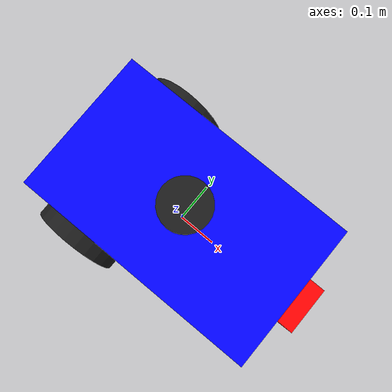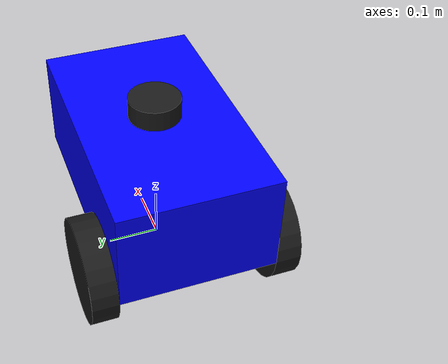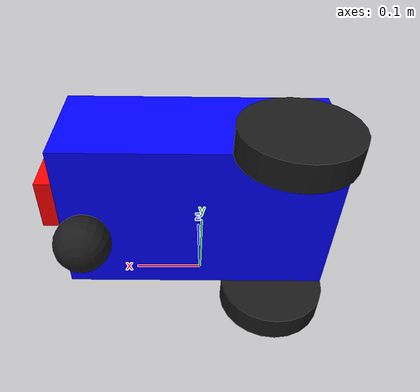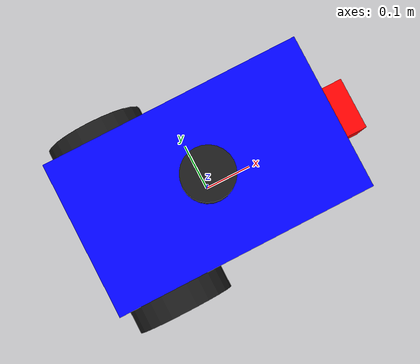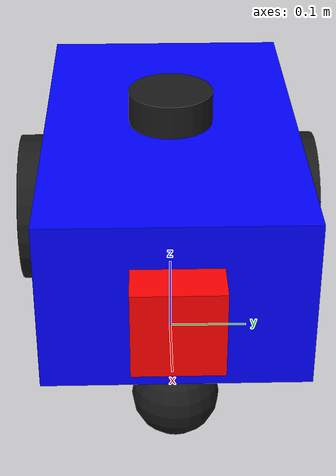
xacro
<?xml version="1.0"?>
<robot name="robot" xmlns:xacro="http://www.ros.org/wiki/xacro">

    <!-- Include common properties -->
    <xacro:include filename="common_properties.xacro"/>
    <!-- Include mobile robot -->
    <xacro:include filename="mobile_robo.xacro"/>
    <!-- Include mobile robot gazebo -->
    <xacro:include filename="mobile_robo_gazebo.xacro"/>
    <!-- Include camera -->
    <xacro:include filename="camera.xacro"/>
    <!-- Include lidar -->
    <xacro:include filename="lidar.xacro"/>

</robot>

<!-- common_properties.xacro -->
<robot xmlns:xacro="http://www.ros.org/wiki/xacro">
    <material name="base_link_material">
        <color rgba="0 0 1 1"/>
    </material>

    <material name="wheel_material">
        <color rgba="0.1 0.1 0.1 1"/>
    </material>

   <xacro:macro name="box_inertia" params="m x y z o_xyz o_rpy">
    <inertial>
        <origin xyz="${o_xyz}" rpy="${o_rpy}"/>
        <mass value="${m}"/>
        <inertia
            ixx="${m * (y*y + z*z) / 12.0}"
            ixy="0.0"
            ixz="0.0"
            iyy="${m * (x*x + z*z) / 12.0}"
            iyz="0.0"
            izz="${m * (x*x + y*y) / 12.0}"/>
    </inertial>
</xacro:macro>

<!-- Inertia Macro for Cylinder -->
<xacro:macro name="cylinder_inertia" params="m r l o_xyz o_rpy">
    <inertial>
        <origin xyz="${o_xyz}" rpy="${o_rpy}"/>
        <mass value="${m}"/>
        <inertia
            ixx="${(m/12) * (3*r*r + l*l)}" ixy="0.0" ixz="0.0"
            iyy="${(m/12) * (3*r*r + l*l)}" iyz="0.0"
            izz="${(m/2) * r*r}"/>
    </inertial>
</xacro:macro>

<!-- Inertia Macro for Sphere -->
<xacro:macro name="sphere_inertia" params="m r o_xyz o_rpy">
    <inertial>
        <origin xyz="${o_xyz}" rpy="${o_rpy}"/>
        <mass value="${m}"/>
        <inertia
            ixx="${(2.0/5.0) * m*r*r}"
            ixy="0.0"
            ixz="0.0"
            iyy="${(2.0/5.0) * m*r*r}"
            iyz="0.0"
            izz="${(2.0/5.0) * m*r*r}"/>
    </inertial>
</xacro:macro>
</robot>

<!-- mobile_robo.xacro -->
<robot xmlns:xacro="http://www.ros.org/wiki/xacro">

 <!-- Robot dimensions -->
    <xacro:property name="base_length" value="0.5"/>
    <xacro:property name="base_width" value="0.3"/>
    <xacro:property name="base_height" value="0.2"/>

    <xacro:property name="wheel_radius" value="0.1"/>
    <xacro:property name="wheel_width" value="0.05"/>

    <xacro:property name="caster_radius" value="0.05"/>

    <!-- Base Footprint -->
    <link name="base_footprint"/>

    <!-- Base Link -->
    <link name="base_link">
        <visual>
            <geometry>
                <box size="${base_length} ${base_width} ${base_height}"/>
            </geometry>
            <origin xyz="0 0 ${base_height/2 + wheel_radius}" rpy="0 0 0"/>
            <material name="base_link_material"/>
        </visual>
        <collision>
            <geometry>
                <box size="${base_length} ${base_width} ${base_height}"/>
            </geometry>
            <origin xyz="0 0 ${base_height/2 + wheel_radius}" rpy="0 0 0"/>
        </collision>
        <xacro:box_inertia
            m="2.0"
            x="${base_length}"
            y="${base_width}"
            z="${base_height}"
            o_xyz="0 0 ${base_height/2 + wheel_radius}"
            o_rpy="0 0 0"/>
    </link>

    <!-- Wheel Macro-->
    <xacro:macro name="wheel" params="prefix">
        <link name="${prefix}_wheel">
            <visual>
                <geometry>
                    <cylinder radius="${wheel_radius}" length="${wheel_width}"/>
                </geometry>
                <origin xyz="0 0 0" rpy="${pi/2.0} 0 0"/>
                <material name="wheel_material"/>
            </visual>
            <collision>
                <geometry>
                    <sphere radius="${wheel_radius}"/>
                </geometry>
                <origin xyz="0 0 0" rpy="${pi/2.0} 0 0"/>
            </collision>
            <xacro:cylinder_inertia
                m="0.5"
                r="${wheel_radius}"
                l="${wheel_width}"
                o_xyz="0 0 0"
                o_rpy="${pi/2.0} 0 0"/>
        </link>

        </xacro:macro>
    <!-- Left Wheel -->
    <xacro:wheel prefix="left"/>

    <!-- Right Wheel -->
    <xacro:wheel prefix="right"/>

    <!-- Caster Wheel -->
    <link name="caster_wheel">
        <visual>
            <geometry>
                <sphere radius="${caster_radius}"/>
            </geometry>
            <origin xyz="0 0 0"/>
            <material name="wheel_material"/>
        </visual>
        <collision>
            <geometry>
                <sphere radius="${caster_radius}"/>
            </geometry>
            <origin xyz="0 0 0"/>
        </collision>
            <xacro:sphere_inertia
        m="0.2"
        r="${caster_radius}"
        o_xyz="0 0 0"
        o_rpy="0 0 0"/>
    </link>

    <!-- Base Footprint Joint -->
    <joint name="base_footprint_joint" type="fixed">
        <parent link="base_footprint"/>
        <child link="base_link"/>
        <origin xyz="0 0 0"/>
    </joint>

    <!-- Left Wheel Joint -->
    <joint name="left_wheel_joint" type="continuous">
        <parent link="base_link"/>
        <child link="left_wheel"/>
        <origin xyz="${-base_length/2 + wheel_radius} ${base_width/2 + wheel_width/2} ${wheel_radius}" rpy="0 0 0"/>
        <axis xyz="0 1 0"/>
    </joint>

    <!-- Right Wheel Joint -->
    <joint name="right_wheel_joint" type="continuous">
        <parent link="base_link"/>
        <child link="right_wheel"/>
        <origin xyz="${-base_length/2 + wheel_radius} ${-base_width/2 - wheel_width/2} ${wheel_radius}" rpy="0 0 0"/>
        <axis xyz="0 1 0"/>
    </joint>

    <!-- Caster Joint -->
    <joint name="caster_base" type="fixed">
        <parent link="base_link"/>
        <child link="caster_wheel"/>
        <origin xyz="${base_length/2 - caster_radius} 0 ${caster_radius}" rpy="0 0 0"/>
    </joint>
</robot>

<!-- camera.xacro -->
<robot xmlns:xacro="http://www.ros.org/wiki/xacro">

    <link name="camera_link">
        <visual>
            <geometry>
                <box size="0.05 0.1 0.1"/>
            </geometry>
            <material name="camera_test">
                <color rgba="1 0 0 1"/>
            </material>
        </visual>
        <collision>
            <geometry>
                <box size="0.05 0.1 0.1"/>
            </geometry>
        </collision>
        <xacro:box_inertia m="0.1" x="0.05" y="0.1" z="0.1"
        o_xyz="0 0 0" o_rpy="0 0 0"/>

    </link>

    <joint name="base_camera_joint" type="fixed">
    <parent link="base_link"/>
    <child link="camera_link"/>
    <origin xyz="${(base_length + 0.05)/2} 0 ${base_height}" rpy="0 0 0"/>
    </joint>

    <link name="camera_link_optical"/>
    <joint name="camera_optical_joint" type="fixed">
        <parent link="camera_link"/>
        <child link="camera_link_optical"/>
        <origin xyz="0 0 0" rpy="${-pi/2} 0 ${-pi/2}"/>
    </joint>

    <gazebo reference="camera_link">
        <sensor name="camera" type="camera">
            <camera>
                <horizontal_fov>1.3962634</horizontal_fov>
                <image>
                    <width>640</width>
                    <height>480</height>
                    <format>R8G8B8</format>
                </image>
                <clip>
                    <near>0.1</near>
                    <far>15</far>
                </clip>
                <noise>
                    <type>gaussian</type>
                    <mean>0.0</mean>
                    <stddev>0.007</stddev>
                </noise>
                <optical_frame_id>camera_link_optical</optical_frame_id>
                <camera_info_topic>camera/camera_info</camera_info_topic>
            </camera>
            <always_on>1</always_on>
            <update_rate>20</update_rate>
            <visualize>true</visualize>
            <topic>camera/image_raw</topic>
        </sensor>
    </gazebo>

</robot>

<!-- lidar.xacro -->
<robot xmlns:xacro="http://www.ros.org/wiki/xacro">

    <link name="lidar_link">

        <visual>
            <geometry>
                <cylinder radius="0.05" length="0.04"/>
            </geometry>
            <material name="lidar_material">
                <color rgba="0.1 0.1 0.1 1"/>
            </material>
        </visual>

        <collision>
            <geometry>
                <cylinder radius="0.05" length="0.04"/>
            </geometry>
        </collision>

        <inertial>
            <mass value="0.2"/>
            <inertia
                ixx="0.0002" ixy="0" ixz="0"
                iyy="0.0002" iyz="0"
                izz="0.00025"/>
        </inertial>

    </link>

    <!-- Mount LiDAR above the robot chassis -->
    <joint name="base_lidar_joint" type="fixed">
        <parent link="base_link"/>
        <child link="lidar_link"/>
        <origin xyz="0 0 0.32" rpy="0 0 0"/>
    </joint>

    <!-- Gazebo LiDAR sensor -->
    <gazebo reference="lidar_link">

        <sensor name="lidar_sensor" type="gpu_lidar">

            <topic>/scan</topic>
            <gz_frame_id>lidar_link</gz_frame_id>

            <update_rate>10</update_rate>

            <lidar>
                <scan>
                    <horizontal>
                        <samples>360</samples>
                        <resolution>1</resolution>
                        <min_angle>-3.14159</min_angle>
                        <max_angle>3.14159</max_angle>
                    </horizontal>
                </scan>

                <range>
                    <min>0.12</min>
                    <max>12.0</max>
                    <resolution>0.01</resolution>
                </range>
            </lidar>

            <always_on>true</always_on>
            <visualize>true</visualize>

        </sensor>

    </gazebo>

</robot>
